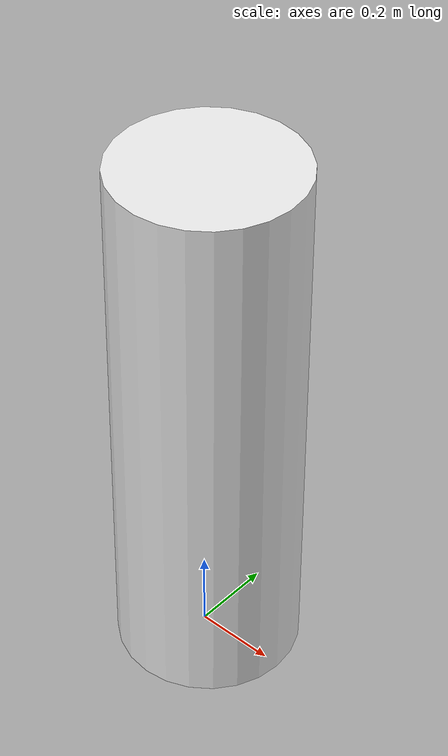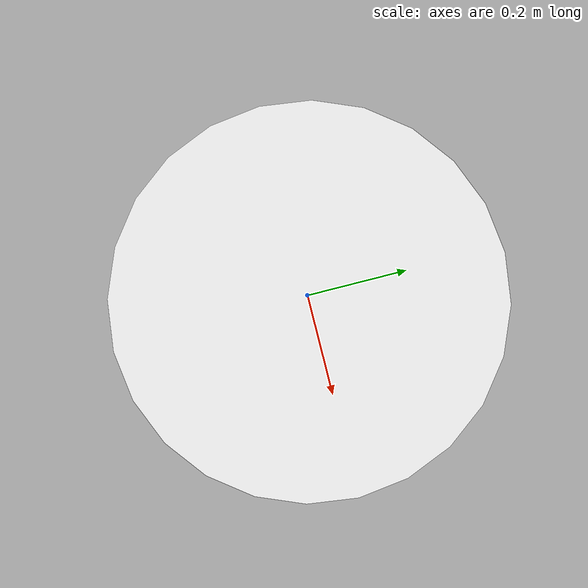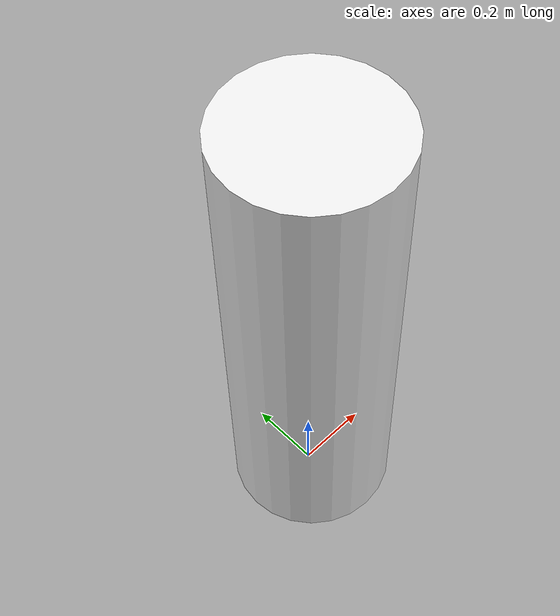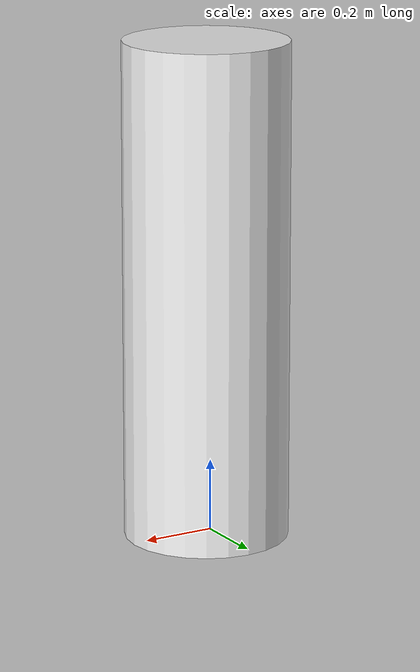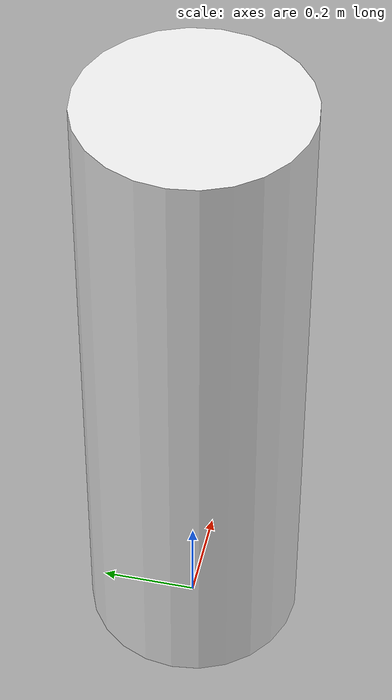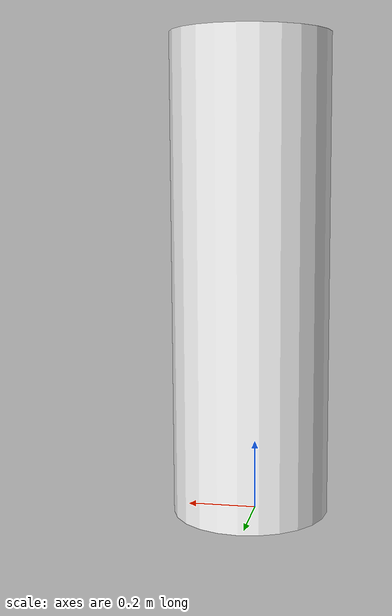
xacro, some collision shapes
<?xml version="1.0"?>
<robot name="wpb_home_simulation" xmlns:xacro="http://ros.org/wiki/xacro">
  <xacro:include filename="$(find mr_description)/urdf/wpb_home/simulation/wpb_home_model.urdf.xacro"/>
  <xacro:include filename="$(find mr_description)/urdf/wpb_home/simulation/wpb_home_gazebo_plugins.xacro"/>

  <xacro:wpb_home_simulation_plugins include_mani_joints="false"/>
</robot>

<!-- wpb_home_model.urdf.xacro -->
<robot name="wpb_home_navigation_model" xmlns:xacro="http://ros.org/wiki/xacro">

  <material name="black">
    <color rgba="0.01 0.01 0.01 1"/>
  </material>
  <material name="grey">
    <color rgba="0.2 0.2 0.2 1"/>
  </material>
  <material name="blue">
    <color rgba="0.2 0.2 0.9 1"/>
  </material>
  <material name="red">
    <color rgba="0.9 0.2 0.2 1"/>
  </material>
  <material name="TransparentGreen">
    <color rgba="0.0 1.0 0.0 0.5"/>
  </material>

  <link name="base_footprint">
    <visual>
      <origin xyz="0 0 0" rpy="0 0 0"/>
      <geometry>
        <box size="0.05 0.05 0.001"/>
      </geometry>
      <material name="TransparentGreen"/>
    </visual>
  </link>

  <joint name="base_joint" type="fixed">
    <origin xyz="0 0 0" rpy="0 0 0"/>
    <parent link="base_footprint"/>
    <child link="base_link"/>
  </joint>

  <link name="base_link">
    <visual>
      <geometry>
        <cylinder length="0.6" radius="0.0"/>
      </geometry>
      <origin rpy="0 0 0" xyz="0 0 0"/>
    </visual>
  </link>

  <link name="body_link">
    <visual>
      <geometry>
        <mesh filename="package://mr_description/meshes/wpb_home/wpb_home.dae" scale="1 1 1"/>
      </geometry>
      <origin rpy="1.57 0 1.57" xyz="-0.225 -0.225 0"/>
    </visual>
    <collision>
      <origin xyz="0.013 0 0.68" rpy="0 0 0"/>
      <geometry>
        <cylinder length="1.37" radius="0.226"/>
      </geometry>
    </collision>
    <inertial>
      <mass value="10"/>
      <inertia ixx="0.4" ixy="0.0" ixz="0.0" iyy="0.4" iyz="0.0" izz="0.2"/>
    </inertial>
  </link>

  <joint name="base_to_body" type="fixed">
    <parent link="base_link"/>
    <child link="body_link"/>
    <origin rpy="0 0 0" xyz="0 0 0"/>
  </joint>

  <gazebo reference="body_link">
    <turnGravityOff>false</turnGravityOff>
  </gazebo>

  <link name="laser">
    <visual>
      <geometry>
        <cylinder length="0.001" radius="0.001"/>
      </geometry>
      <origin rpy="0 0 0" xyz="0 0 0"/>
    </visual>
    <inertial>
      <origin xyz="0 0 0" rpy="0 0 0"/>
      <mass value="0.01"/>
      <inertia ixx="0.000001" ixy="0.0" ixz="0.0" iyy="0.000001" iyz="0.0" izz="0.000001"/>
    </inertial>
  </link>

  <joint name="laser_joint" type="fixed">
    <origin rpy="0 0 0" xyz="0 0 0"/>
    <parent link="base_link"/>
    <child link="laser"/>
  </joint>

  <link name="kinect2_dock">
    <visual>
      <geometry>
        <box size="0.001 0.001 0.001"/>
      </geometry>
      <origin rpy="0 0 0" xyz="0 0 0"/>
      <material name="red"/>
    </visual>
    <inertial>
      <origin xyz="0 0 0" rpy="0 0 0"/>
      <mass value="0.1"/>
      <inertia ixx="0.0001" ixy="0.0" ixz="0.0" iyy="0.0001" iyz="0.0" izz="0.0001"/>
    </inertial>
  </link>

  <joint name="kinect_height" type="prismatic">
    <parent link="base_link"/>
    <child link="kinect2_dock"/>
    <limit effort="1000.0" lower="0" upper="1.7" velocity="0.5"/>
    <origin xyz="0.145 -0.013 0" rpy="0 -1.5707963 0"/>
  </joint>

  <link name="kinect2_ir_optical_frame">
    <visual>
      <geometry>
        <box size="0.001 0.001 0.001"/>
      </geometry>
      <origin xyz="0 0 0" rpy="0 0 0"/>
      <material name="blue"/>
    </visual>
    <inertial>
      <origin xyz="0 0 0" rpy="0 0 0"/>
      <mass value="0.01"/>
      <inertia ixx="0.000001" ixy="0.0" ixz="0.0" iyy="0.000001" iyz="0.0" izz="0.000001"/>
    </inertial>
  </link>

  <joint name="kinect_pitch" type="revolute">
    <axis xyz="1 0 0"/>
    <limit effort="1000.0" lower="-1.57" upper="1.57" velocity="0.5"/>
    <origin xyz="0 0 0" rpy="3.1415926 0 -1.5707963"/>
    <parent link="kinect2_dock"/>
    <child link="kinect2_ir_optical_frame"/>
  </joint>

  <link name="kinect2_rgb_optical_frame">
    <visual>
      <geometry>
        <box size="0.001 0.001 0.001"/>
      </geometry>
      <origin rpy="0 0 0" xyz="0 0 0"/>
      <material name="blue"/>
    </visual>
    <inertial>
      <origin xyz="0 0 0" rpy="0 0 0"/>
      <mass value="0.01"/>
      <inertia ixx="0.000001" ixy="0.0" ixz="0.0" iyy="0.000001" iyz="0.0" izz="0.000001"/>
    </inertial>
  </link>

  <joint name="kinect_hd_joint" type="fixed">
    <origin xyz="0 0 0" rpy="0 0 0"/>
    <parent link="kinect2_ir_optical_frame"/>
    <child link="kinect2_rgb_optical_frame"/>
  </joint>

  <gazebo>
    <plugin name="gazebo_ros_control" filename="libgazebo_ros_control.so">
      <robotNamespace>/</robotNamespace>
    </plugin>
  </gazebo>
</robot>

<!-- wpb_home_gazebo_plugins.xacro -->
<robot name="wpb_home_gazebo_plugins" xmlns:xacro="http://ros.org/wiki/xacro">
  <xacro:arg name="wheel_mu" default="1.0"/>
  <xacro:arg name="laser_visual" default="false"/>
  <xacro:arg name="camera_visual" default="false"/>
  <xacro:arg name="imu_visual" default="false"/>
  <xacro:arg name="enable_laser" default="true"/>
  <xacro:arg name="enable_camera" default="true"/>
  <xacro:arg name="enable_imu" default="true"/>

  <xacro:property name="wpb_wheel_radius" value="0.075"/>
  <xacro:property name="wpb_wheel_width" value="0.040"/>
  <xacro:property name="wpb_wheel_separation" value="0.460"/>
  <xacro:property name="wpb_caster_radius" value="0.030"/>

  <xacro:macro name="wpb_home_simulation_plugins" params="include_mani_joints:=false">
    <gazebo reference="body_link">
      <mu1>0.05</mu1>
      <mu2>0.05</mu2>
      <kp>500000.0</kp>
      <kd>10.0</kd>
      <minDepth>0.001</minDepth>
      <maxVel>0.1</maxVel>
      <material>Gazebo/White</material>
    </gazebo>

    <joint name="wpb_left_wheel_joint" type="continuous">
      <parent link="base_link"/>
      <child link="wpb_left_wheel_link"/>
      <origin xyz="0.0 0.230 0.065" rpy="-1.5707963 0 0"/>
      <axis xyz="0 0 1"/>
    </joint>

    <link name="wpb_left_wheel_link">
      <collision>
        <origin xyz="0 0 0" rpy="0 0 0"/>
        <geometry>
          <cylinder length="${wpb_wheel_width}" radius="${wpb_wheel_radius}"/>
        </geometry>
      </collision>
      <inertial>
        <origin xyz="0 0 0"/>
        <mass value="0.10"/>
        <inertia ixx="0.00008" ixy="0.0" ixz="0.0" iyy="0.00008" iyz="0.0" izz="0.00014"/>
      </inertial>
    </link>

    <joint name="wpb_right_wheel_joint" type="continuous">
      <parent link="base_link"/>
      <child link="wpb_right_wheel_link"/>
      <origin xyz="0.0 -0.230 0.065" rpy="-1.5707963 0 0"/>
      <axis xyz="0 0 1"/>
    </joint>

    <link name="wpb_right_wheel_link">
      <collision>
        <origin xyz="0 0 0" rpy="0 0 0"/>
        <geometry>
          <cylinder length="${wpb_wheel_width}" radius="${wpb_wheel_radius}"/>
        </geometry>
      </collision>
      <inertial>
        <origin xyz="0 0 0"/>
        <mass value="0.10"/>
        <inertia ixx="0.00008" ixy="0.0" ixz="0.0" iyy="0.00008" iyz="0.0" izz="0.00014"/>
      </inertial>
    </link>

    <gazebo reference="wpb_left_wheel_link">
      <mu1>$(arg wheel_mu)</mu1>
      <mu2>$(arg wheel_mu)</mu2>
      <kp>500000.0</kp>
      <kd>10.0</kd>
      <minDepth>0.001</minDepth>
      <maxVel>0.1</maxVel>
      <fdir1>1 0 0</fdir1>
    </gazebo>

    <gazebo reference="wpb_right_wheel_link">
      <mu1>$(arg wheel_mu)</mu1>
      <mu2>$(arg wheel_mu)</mu2>
      <kp>500000.0</kp>
      <kd>10.0</kd>
      <minDepth>0.001</minDepth>
      <maxVel>0.1</maxVel>
      <fdir1>1 0 0</fdir1>
    </gazebo>

    <gazebo>
      <plugin name="wpb_home_diff_drive" filename="libgazebo_ros_diff_drive.so">
        <commandTopic>cmd_vel</commandTopic>
        <odometryTopic>odom</odometryTopic>
        <odometryFrame>odom</odometryFrame>
        <odometrySource>world</odometrySource>
        <publishOdomTF>true</publishOdomTF>
        <robotBaseFrame>base_footprint</robotBaseFrame>
        <publishWheelTF>false</publishWheelTF>
        <publishTf>true</publishTf>
        <publishWheelJointState>true</publishWheelJointState>
        <legacyMode>false</legacyMode>
        <updateRate>30</updateRate>
        <leftJoint>wpb_left_wheel_joint</leftJoint>
        <rightJoint>wpb_right_wheel_joint</rightJoint>
        <wheelSeparation>${wpb_wheel_separation}</wheelSeparation>
        <wheelDiameter>${2 * wpb_wheel_radius}</wheelDiameter>
        <wheelAcceleration>1.0</wheelAcceleration>
        <wheelTorque>20.0</wheelTorque>
        <rosDebugLevel>na</rosDebugLevel>
      </plugin>
    </gazebo>

    <xacro:if value="${include_mani_joints}">
      <joint name="wpb_front_caster_joint" type="fixed">
        <parent link="base_link"/>
        <child link="wpb_front_caster_link"/>
        <origin xyz="0.160 0.0 ${wpb_caster_radius}" rpy="0 0 0"/>
      </joint>

      <link name="wpb_front_caster_link">
        <collision>
          <origin xyz="0 0 0" rpy="0 0 0"/>
          <geometry>
            <sphere radius="${wpb_caster_radius}"/>
          </geometry>
        </collision>
        <inertial>
          <origin xyz="0 0 0"/>
          <mass value="0.02"/>
          <inertia ixx="0.00001" ixy="0.0" ixz="0.0" iyy="0.00001" iyz="0.0" izz="0.00001"/>
        </inertial>
      </link>

      <joint name="wpb_rear_caster_joint" type="fixed">
        <parent link="base_link"/>
        <child link="wpb_rear_caster_link"/>
        <origin xyz="-0.160 0.0 ${wpb_caster_radius}" rpy="0 0 0"/>
      </joint>

      <link name="wpb_rear_caster_link">
        <collision>
          <origin xyz="0 0 0" rpy="0 0 0"/>
          <geometry>
            <sphere radius="${wpb_caster_radius}"/>
          </geometry>
        </collision>
        <inertial>
          <origin xyz="0 0 0"/>
          <mass value="0.02"/>
          <inertia ixx="0.00001" ixy="0.0" ixz="0.0" iyy="0.00001" iyz="0.0" izz="0.00001"/>
        </inertial>
      </link>

      <gazebo reference="wpb_front_caster_link">
        <mu1>0.02</mu1>
        <mu2>0.02</mu2>
        <kp>500000.0</kp>
        <kd>10.0</kd>
        <minDepth>0.001</minDepth>
        <maxVel>0.1</maxVel>
      </gazebo>

      <gazebo reference="wpb_rear_caster_link">
        <mu1>0.02</mu1>
        <mu2>0.02</mu2>
        <kp>500000.0</kp>
        <kd>10.0</kd>
        <minDepth>0.001</minDepth>
        <maxVel>0.1</maxVel>
      </gazebo>

      <gazebo>
        <plugin name="wpb_home_mani_joint_state_publisher" filename="libgazebo_ros_joint_state_publisher.so">
          <jointName>mani_base, elbow_forearm, forearm_left_finger, forearm_right_finger</jointName>
          <updateRate>30.0</updateRate>
          <alwaysOn>true</alwaysOn>
        </plugin>
      </gazebo>
    </xacro:if>

    <xacro:if value="$(arg enable_laser)">
      <gazebo reference="laser">
        <sensor type="ray" name="wpb_home_rplidar_sensor">
          <pose>0 0 0.15 0 0 0</pose>
          <visualize>$(arg laser_visual)</visualize>
          <update_rate>10</update_rate>
          <ray>
            <scan>
              <horizontal>
                <samples>360</samples>
                <resolution>1</resolution>
                <min_angle>-3.14159265</min_angle>
                <max_angle>3.14159265</max_angle>
              </horizontal>
            </scan>
            <range>
              <min>0.24</min>
              <max>6.0</max>
              <resolution>0.01</resolution>
            </range>
            <noise>
              <type>gaussian</type>
              <mean>0.0</mean>
              <stddev>0.01</stddev>
            </noise>
          </ray>
          <plugin name="wpb_home_rplidar_controller" filename="libgazebo_ros_laser.so">
            <topicName>scan</topicName>
            <frameName>laser</frameName>
          </plugin>
        </sensor>
      </gazebo>
    </xacro:if>

    <xacro:if value="$(arg enable_camera)">
      <gazebo reference="base_link">
        <sensor type="depth" name="wpb_home_rgbd_sensor">
          <pose>0.145 -0.013 1.37 0 0.5 0</pose>
          <always_on>true</always_on>
          <visualize>$(arg camera_visual)</visualize>
          <update_rate>15.0</update_rate>
          <camera name="wpb_home_rgbd_camera">
            <horizontal_fov>1.221730456</horizontal_fov>
            <image>
              <width>640</width>
              <height>480</height>
              <format>R8G8B8</format>
            </image>
            <clip>
              <near>0.3</near>
              <far>6.0</far>
            </clip>
            <noise>
              <type>gaussian</type>
              <mean>0.0</mean>
              <stddev>0.007</stddev>
            </noise>
          </camera>
          <plugin name="wpb_home_rgbd_controller" filename="libgazebo_ros_depth_camera.so">
            <alwaysOn>true</alwaysOn>
            <updateRate>15.0</updateRate>
            <cameraName>camera</cameraName>
            <imageTopicName>rgb/image_raw</imageTopicName>
            <cameraInfoTopicName>rgb/camera_info</cameraInfoTopicName>
            <depthImageTopicName>depth/image_raw</depthImageTopicName>
            <depthImageCameraInfoTopicName>depth/camera_info</depthImageCameraInfoTopicName>
            <pointCloudTopicName>depth/points</pointCloudTopicName>
            <frameName>kinect2_rgb_optical_frame</frameName>
            <pointCloudCutoff>0.3</pointCloudCutoff>
            <pointCloudCutoffMax>6.0</pointCloudCutoffMax>
            <distortionK1>0.0</distortionK1>
            <distortionK2>0.0</distortionK2>
            <distortionK3>0.0</distortionK3>
            <distortionT1>0.0</distortionT1>
            <distortionT2>0.0</distortionT2>
          </plugin>
        </sensor>
      </gazebo>
    </xacro:if>

    <xacro:if value="$(arg enable_imu)">
      <gazebo reference="body_link">
        <sensor name="wpb_home_imu_sensor" type="imu">
          <always_on>true</always_on>
          <update_rate>100</update_rate>
          <visualize>$(arg imu_visual)</visualize>
          <plugin filename="libgazebo_ros_imu_sensor.so" name="wpb_home_imu_plugin">
            <topicName>imu</topicName>
            <bodyName>body_link</bodyName>
            <updateRateHZ>100.0</updateRateHZ>
            <gaussianNoise>0.0</gaussianNoise>
            <xyzOffset>0 0 0</xyzOffset>
            <rpyOffset>0 0 0</rpyOffset>
            <frameName>body_link</frameName>
          </plugin>
        </sensor>
      </gazebo>
    </xacro:if>
  </xacro:macro>
</robot>
